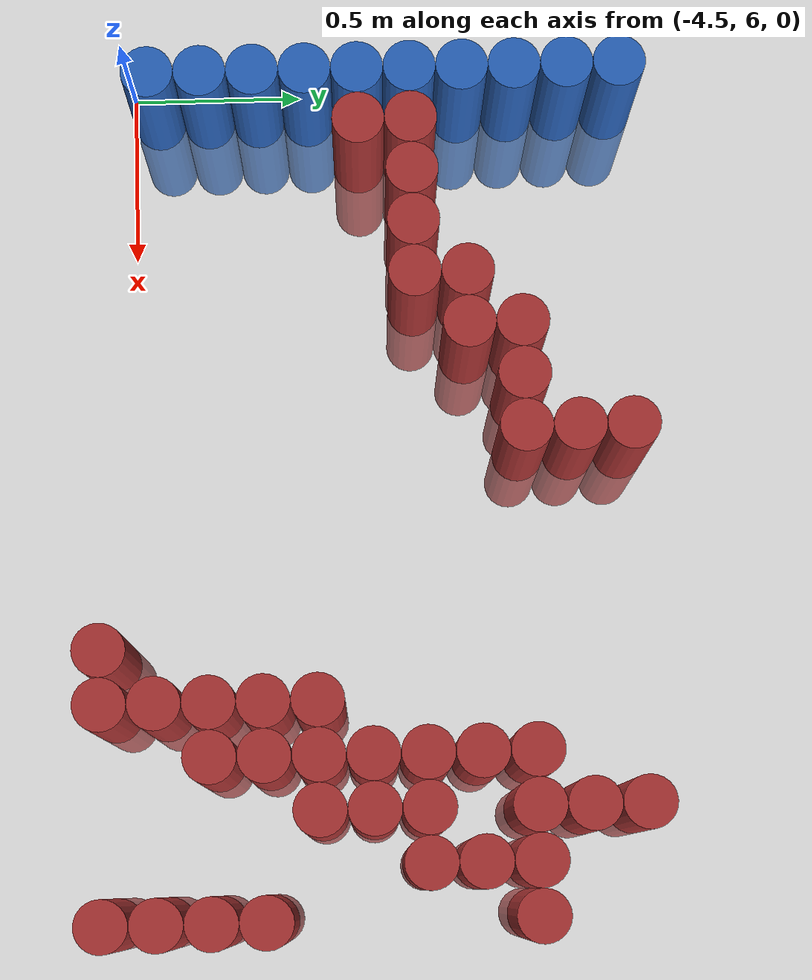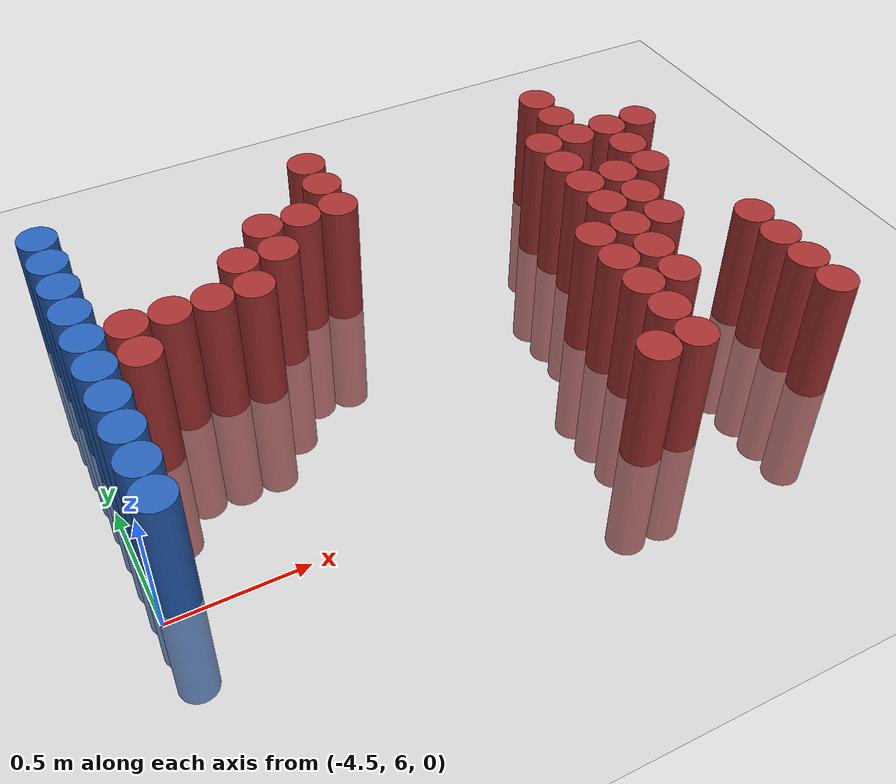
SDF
<sdf version="1.6">
 <world name="default">
  <model name="ground_plane">
   <static>1</static>
   <link name="link">
    <collision name="collision">
     <geometry><plane><normal>0 0 1</normal><size>100 100</size></plane></geometry>
     <surface><friction><ode><mu>100</mu><mu2>50</mu2></ode></friction></surface>
    </collision>
    <visual name="visual">
     <cast_shadows>0</cast_shadows>
     <geometry><plane><normal>0 0 1</normal><size>100 100</size></plane></geometry>
     <material>
      <script><uri>file://media/materials/scripts/gazebo.material</uri><name>Gazebo/Grey</name></script>
     </material>
    </visual>
   </link>
  </model>
  <model name="unit_cylinder_102">
   <static>1</static>
   <pose>-4.425000 6.075000 0.000000 0.000000 0.000000 0.000000</pose>
   <link name="link">
    <inertial>
     <mass>1</mass>
     <inertia><ixx>0.145833</ixx><ixy>0</ixy><ixz>0</ixz><iyy>0.145833</iyy><iyz>0</iyz><izz>0.125</izz></inertia>
    </inertial>
    <collision name="collision">
     <geometry><cylinder><radius>0.075000</radius><length>1</length></cylinder></geometry>
    </collision>
    <visual name="visual">
     <geometry><cylinder><radius>0.075000</radius><length>1</length></cylinder></geometry>
     <material>
      <ambient>0.152000 0.379000 0.720000 1</ambient>
      <diffuse>0.152000 0.379000 0.720000 1</diffuse>
     </material>
     <material>
      <script><name>Gazebo/Grey</name><uri>file://media/materials/scripts/gazebo.material</uri></script>
     </material>
    </visual>
   </link>
  </model>
  <model name="unit_cylinder_103">
   <static>1</static>
   <pose>-4.425000 6.225000 0.000000 0.000000 0.000000 0.000000</pose>
   <link name="link">
    <inertial>
     <mass>1</mass>
     <inertia><ixx>0.145833</ixx><ixy>0</ixy><ixz>0</ixz><iyy>0.145833</iyy><iyz>0</iyz><izz>0.125</izz></inertia>
    </inertial>
    <collision name="collision">
     <geometry><cylinder><radius>0.075000</radius><length>1</length></cylinder></geometry>
    </collision>
    <visual name="visual">
     <geometry><cylinder><radius>0.075000</radius><length>1</length></cylinder></geometry>
     <material>
      <ambient>0.152000 0.379000 0.720000 1</ambient>
      <diffuse>0.152000 0.379000 0.720000 1</diffuse>
     </material>
     <material>
      <script><name>Gazebo/Grey</name><uri>file://media/materials/scripts/gazebo.material</uri></script>
     </material>
    </visual>
   </link>
  </model>
  <model name="unit_cylinder_104">
   <static>1</static>
   <pose>-4.425000 6.375000 0.000000 0.000000 0.000000 0.000000</pose>
   <link name="link">
    <inertial>
     <mass>1</mass>
     <inertia><ixx>0.145833</ixx><ixy>0</ixy><ixz>0</ixz><iyy>0.145833</iyy><iyz>0</iyz><izz>0.125</izz></inertia>
    </inertial>
    <collision name="collision">
     <geometry><cylinder><radius>0.075000</radius><length>1</length></cylinder></geometry>
    </collision>
    <visual name="visual">
     <geometry><cylinder><radius>0.075000</radius><length>1</length></cylinder></geometry>
     <material>
      <ambient>0.152000 0.379000 0.720000 1</ambient>
      <diffuse>0.152000 0.379000 0.720000 1</diffuse>
     </material>
     <material>
      <script><name>Gazebo/Grey</name><uri>file://media/materials/scripts/gazebo.material</uri></script>
     </material>
    </visual>
   </link>
  </model>
  <model name="unit_cylinder_105">
   <static>1</static>
   <pose>-4.425000 6.525000 0.000000 0.000000 0.000000 0.000000</pose>
   <link name="link">
    <inertial>
     <mass>1</mass>
     <inertia><ixx>0.145833</ixx><ixy>0</ixy><ixz>0</ixz><iyy>0.145833</iyy><iyz>0</iyz><izz>0.125</izz></inertia>
    </inertial>
    <collision name="collision">
     <geometry><cylinder><radius>0.075000</radius><length>1</length></cylinder></geometry>
    </collision>
    <visual name="visual">
     <geometry><cylinder><radius>0.075000</radius><length>1</length></cylinder></geometry>
     <material>
      <ambient>0.152000 0.379000 0.720000 1</ambient>
      <diffuse>0.152000 0.379000 0.720000 1</diffuse>
     </material>
     <material>
      <script><name>Gazebo/Grey</name><uri>file://media/materials/scripts/gazebo.material</uri></script>
     </material>
    </visual>
   </link>
  </model>
  <model name="unit_cylinder_106">
   <static>1</static>
   <pose>-4.425000 6.675000 0.000000 0.000000 0.000000 0.000000</pose>
   <link name="link">
    <inertial>
     <mass>1</mass>
     <inertia><ixx>0.145833</ixx><ixy>0</ixy><ixz>0</ixz><iyy>0.145833</iyy><iyz>0</iyz><izz>0.125</izz></inertia>
    </inertial>
    <collision name="collision">
     <geometry><cylinder><radius>0.075000</radius><length>1</length></cylinder></geometry>
    </collision>
    <visual name="visual">
     <geometry><cylinder><radius>0.075000</radius><length>1</length></cylinder></geometry>
     <material>
      <ambient>0.152000 0.379000 0.720000 1</ambient>
      <diffuse>0.152000 0.379000 0.720000 1</diffuse>
     </material>
     <material>
      <script><name>Gazebo/Grey</name><uri>file://media/materials/scripts/gazebo.material</uri></script>
     </material>
    </visual>
   </link>
  </model>
  <model name="unit_cylinder_107">
   <static>1</static>
   <pose>-4.425000 6.825000 0.000000 0.000000 0.000000 0.000000</pose>
   <link name="link">
    <inertial>
     <mass>1</mass>
     <inertia><ixx>0.145833</ixx><ixy>0</ixy><ixz>0</ixz><iyy>0.145833</iyy><iyz>0</iyz><izz>0.125</izz></inertia>
    </inertial>
    <collision name="collision">
     <geometry><cylinder><radius>0.075000</radius><length>1</length></cylinder></geometry>
    </collision>
    <visual name="visual">
     <geometry><cylinder><radius>0.075000</radius><length>1</length></cylinder></geometry>
     <material>
      <ambient>0.152000 0.379000 0.720000 1</ambient>
      <diffuse>0.152000 0.379000 0.720000 1</diffuse>
     </material>
     <material>
      <script><name>Gazebo/Grey</name><uri>file://media/materials/scripts/gazebo.material</uri></script>
     </material>
    </visual>
   </link>
  </model>
  <model name="unit_cylinder_108">
   <static>1</static>
   <pose>-4.425000 6.975000 0.000000 0.000000 0.000000 0.000000</pose>
   <link name="link">
    <inertial>
     <mass>1</mass>
     <inertia><ixx>0.145833</ixx><ixy>0</ixy><ixz>0</ixz><iyy>0.145833</iyy><iyz>0</iyz><izz>0.125</izz></inertia>
    </inertial>
    <collision name="collision">
     <geometry><cylinder><radius>0.075000</radius><length>1</length></cylinder></geometry>
    </collision>
    <visual name="visual">
     <geometry><cylinder><radius>0.075000</radius><length>1</length></cylinder></geometry>
     <material>
      <ambient>0.152000 0.379000 0.720000 1</ambient>
      <diffuse>0.152000 0.379000 0.720000 1</diffuse>
     </material>
     <material>
      <script><name>Gazebo/Grey</name><uri>file://media/materials/scripts/gazebo.material</uri></script>
     </material>
    </visual>
   </link>
  </model>
  <model name="unit_cylinder_109">
   <static>1</static>
   <pose>-4.425000 7.125000 0.000000 0.000000 0.000000 0.000000</pose>
   <link name="link">
    <inertial>
     <mass>1</mass>
     <inertia><ixx>0.145833</ixx><ixy>0</ixy><ixz>0</ixz><iyy>0.145833</iyy><iyz>0</iyz><izz>0.125</izz></inertia>
    </inertial>
    <collision name="collision">
     <geometry><cylinder><radius>0.075000</radius><length>1</length></cylinder></geometry>
    </collision>
    <visual name="visual">
     <geometry><cylinder><radius>0.075000</radius><length>1</length></cylinder></geometry>
     <material>
      <ambient>0.152000 0.379000 0.720000 1</ambient>
      <diffuse>0.152000 0.379000 0.720000 1</diffuse>
     </material>
     <material>
      <script><name>Gazebo/Grey</name><uri>file://media/materials/scripts/gazebo.material</uri></script>
     </material>
    </visual>
   </link>
  </model>
  <model name="unit_cylinder_110">
   <static>1</static>
   <pose>-4.425000 7.275000 0.000000 0.000000 0.000000 0.000000</pose>
   <link name="link">
    <inertial>
     <mass>1</mass>
     <inertia><ixx>0.145833</ixx><ixy>0</ixy><ixz>0</ixz><iyy>0.145833</iyy><iyz>0</iyz><izz>0.125</izz></inertia>
    </inertial>
    <collision name="collision">
     <geometry><cylinder><radius>0.075000</radius><length>1</length></cylinder></geometry>
    </collision>
    <visual name="visual">
     <geometry><cylinder><radius>0.075000</radius><length>1</length></cylinder></geometry>
     <material>
      <ambient>0.152000 0.379000 0.720000 1</ambient>
      <diffuse>0.152000 0.379000 0.720000 1</diffuse>
     </material>
     <material>
      <script><name>Gazebo/Grey</name><uri>file://media/materials/scripts/gazebo.material</uri></script>
     </material>
    </visual>
   </link>
  </model>
  <model name="unit_cylinder_111">
   <static>1</static>
   <pose>-4.425000 7.425000 0.000000 0.000000 0.000000 0.000000</pose>
   <link name="link">
    <inertial>
     <mass>1</mass>
     <inertia><ixx>0.145833</ixx><ixy>0</ixy><ixz>0</ixz><iyy>0.145833</iyy><iyz>0</iyz><izz>0.125</izz></inertia>
    </inertial>
    <collision name="collision">
     <geometry><cylinder><radius>0.075000</radius><length>1</length></cylinder></geometry>
    </collision>
    <visual name="visual">
     <geometry><cylinder><radius>0.075000</radius><length>1</length></cylinder></geometry>
     <material>
      <ambient>0.152000 0.379000 0.720000 1</ambient>
      <diffuse>0.152000 0.379000 0.720000 1</diffuse>
     </material>
     <material>
      <script><name>Gazebo/Grey</name><uri>file://media/materials/scripts/gazebo.material</uri></script>
     </material>
    </visual>
   </link>
  </model>
  <model name="unit_cylinder_126">
   <static>1</static>
   <pose>-4.275000 6.675000 0.000000 0.000000 0.000000 0.000000</pose>
   <link name="link">
    <inertial>
     <mass>1</mass>
     <inertia><ixx>0.145833</ixx><ixy>0</ixy><ixz>0</ixz><iyy>0.145833</iyy><iyz>0</iyz><izz>0.125</izz></inertia>
    </inertial>
    <collision name="collision">
     <geometry><cylinder><radius>0.075000</radius><length>1</length></cylinder></geometry>
    </collision>
    <visual name="visual">
     <geometry><cylinder><radius>0.075000</radius><length>1</length></cylinder></geometry>
     <material>
      <ambient>0.648000 0.192000 0.192000 1</ambient>
      <diffuse>0.648000 0.192000 0.192000 1</diffuse>
     </material>
     <material>
      <script><name>Gazebo/Grey</name><uri>file://media/materials/scripts/gazebo.material</uri></script>
     </material>
    </visual>
   </link>
  </model>
  <model name="unit_cylinder_127">
   <static>1</static>
   <pose>-4.275000 6.825000 0.000000 0.000000 0.000000 0.000000</pose>
   <link name="link">
    <inertial>
     <mass>1</mass>
     <inertia><ixx>0.145833</ixx><ixy>0</ixy><ixz>0</ixz><iyy>0.145833</iyy><iyz>0</iyz><izz>0.125</izz></inertia>
    </inertial>
    <collision name="collision">
     <geometry><cylinder><radius>0.075000</radius><length>1</length></cylinder></geometry>
    </collision>
    <visual name="visual">
     <geometry><cylinder><radius>0.075000</radius><length>1</length></cylinder></geometry>
     <material>
      <ambient>0.648000 0.192000 0.192000 1</ambient>
      <diffuse>0.648000 0.192000 0.192000 1</diffuse>
     </material>
     <material>
      <script><name>Gazebo/Grey</name><uri>file://media/materials/scripts/gazebo.material</uri></script>
     </material>
    </visual>
   </link>
  </model>
  <model name="unit_cylinder_129">
   <static>1</static>
   <pose>-4.125000 6.825000 0.000000 0.000000 0.000000 0.000000</pose>
   <link name="link">
    <inertial>
     <mass>1</mass>
     <inertia><ixx>0.145833</ixx><ixy>0</ixy><ixz>0</ixz><iyy>0.145833</iyy><iyz>0</iyz><izz>0.125</izz></inertia>
    </inertial>
    <collision name="collision">
     <geometry><cylinder><radius>0.075000</radius><length>1</length></cylinder></geometry>
    </collision>
    <visual name="visual">
     <geometry><cylinder><radius>0.075000</radius><length>1</length></cylinder></geometry>
     <material>
      <ambient>0.648000 0.192000 0.192000 1</ambient>
      <diffuse>0.648000 0.192000 0.192000 1</diffuse>
     </material>
     <material>
      <script><name>Gazebo/Grey</name><uri>file://media/materials/scripts/gazebo.material</uri></script>
     </material>
    </visual>
   </link>
  </model>
  <model name="unit_cylinder_136">
   <static>1</static>
   <pose>-3.975000 6.825000 0.000000 0.000000 0.000000 0.000000</pose>
   <link name="link">
    <inertial>
     <mass>1</mass>
     <inertia><ixx>0.145833</ixx><ixy>0</ixy><ixz>0</ixz><iyy>0.145833</iyy><iyz>0</iyz><izz>0.125</izz></inertia>
    </inertial>
    <collision name="collision">
     <geometry><cylinder><radius>0.075000</radius><length>1</length></cylinder></geometry>
    </collision>
    <visual name="visual">
     <geometry><cylinder><radius>0.075000</radius><length>1</length></cylinder></geometry>
     <material>
      <ambient>0.648000 0.192000 0.192000 1</ambient>
      <diffuse>0.648000 0.192000 0.192000 1</diffuse>
     </material>
     <material>
      <script><name>Gazebo/Grey</name><uri>file://media/materials/scripts/gazebo.material</uri></script>
     </material>
    </visual>
   </link>
  </model>
  <model name="unit_cylinder_141">
   <static>1</static>
   <pose>-3.825000 6.825000 0.000000 0.000000 0.000000 0.000000</pose>
   <link name="link">
    <inertial>
     <mass>1</mass>
     <inertia><ixx>0.145833</ixx><ixy>0</ixy><ixz>0</ixz><iyy>0.145833</iyy><iyz>0</iyz><izz>0.125</izz></inertia>
    </inertial>
    <collision name="collision">
     <geometry><cylinder><radius>0.075000</radius><length>1</length></cylinder></geometry>
    </collision>
    <visual name="visual">
     <geometry><cylinder><radius>0.075000</radius><length>1</length></cylinder></geometry>
     <material>
      <ambient>0.648000 0.192000 0.192000 1</ambient>
      <diffuse>0.648000 0.192000 0.192000 1</diffuse>
     </material>
     <material>
      <script><name>Gazebo/Grey</name><uri>file://media/materials/scripts/gazebo.material</uri></script>
     </material>
    </visual>
   </link>
  </model>
  <model name="unit_cylinder_142">
   <static>1</static>
   <pose>-3.825000 6.975000 0.000000 0.000000 0.000000 0.000000</pose>
   <link name="link">
    <inertial>
     <mass>1</mass>
     <inertia><ixx>0.145833</ixx><ixy>0</ixy><ixz>0</ixz><iyy>0.145833</iyy><iyz>0</iyz><izz>0.125</izz></inertia>
    </inertial>
    <collision name="collision">
     <geometry><cylinder><radius>0.075000</radius><length>1</length></cylinder></geometry>
    </collision>
    <visual name="visual">
     <geometry><cylinder><radius>0.075000</radius><length>1</length></cylinder></geometry>
     <material>
      <ambient>0.648000 0.192000 0.192000 1</ambient>
      <diffuse>0.648000 0.192000 0.192000 1</diffuse>
     </material>
     <material>
      <script><name>Gazebo/Grey</name><uri>file://media/materials/scripts/gazebo.material</uri></script>
     </material>
    </visual>
   </link>
  </model>
  <model name="unit_cylinder_146">
   <static>1</static>
   <pose>-3.675000 6.975000 0.000000 0.000000 0.000000 0.000000</pose>
   <link name="link">
    <inertial>
     <mass>1</mass>
     <inertia><ixx>0.145833</ixx><ixy>0</ixy><ixz>0</ixz><iyy>0.145833</iyy><iyz>0</iyz><izz>0.125</izz></inertia>
    </inertial>
    <collision name="collision">
     <geometry><cylinder><radius>0.075000</radius><length>1</length></cylinder></geometry>
    </collision>
    <visual name="visual">
     <geometry><cylinder><radius>0.075000</radius><length>1</length></cylinder></geometry>
     <material>
      <ambient>0.648000 0.192000 0.192000 1</ambient>
      <diffuse>0.648000 0.192000 0.192000 1</diffuse>
     </material>
     <material>
      <script><name>Gazebo/Grey</name><uri>file://media/materials/scripts/gazebo.material</uri></script>
     </material>
    </visual>
   </link>
  </model>
  <model name="unit_cylinder_147">
   <static>1</static>
   <pose>-3.675000 7.125000 0.000000 0.000000 0.000000 0.000000</pose>
   <link name="link">
    <inertial>
     <mass>1</mass>
     <inertia><ixx>0.145833</ixx><ixy>0</ixy><ixz>0</ixz><iyy>0.145833</iyy><iyz>0</iyz><izz>0.125</izz></inertia>
    </inertial>
    <collision name="collision">
     <geometry><cylinder><radius>0.075000</radius><length>1</length></cylinder></geometry>
    </collision>
    <visual name="visual">
     <geometry><cylinder><radius>0.075000</radius><length>1</length></cylinder></geometry>
     <material>
      <ambient>0.648000 0.192000 0.192000 1</ambient>
      <diffuse>0.648000 0.192000 0.192000 1</diffuse>
     </material>
     <material>
      <script><name>Gazebo/Grey</name><uri>file://media/materials/scripts/gazebo.material</uri></script>
     </material>
    </visual>
   </link>
  </model>
  <model name="unit_cylinder_149">
   <static>1</static>
   <pose>-3.525000 7.125000 0.000000 0.000000 0.000000 0.000000</pose>
   <link name="link">
    <inertial>
     <mass>1</mass>
     <inertia><ixx>0.145833</ixx><ixy>0</ixy><ixz>0</ixz><iyy>0.145833</iyy><iyz>0</iyz><izz>0.125</izz></inertia>
    </inertial>
    <collision name="collision">
     <geometry><cylinder><radius>0.075000</radius><length>1</length></cylinder></geometry>
    </collision>
    <visual name="visual">
     <geometry><cylinder><radius>0.075000</radius><length>1</length></cylinder></geometry>
     <material>
      <ambient>0.648000 0.192000 0.192000 1</ambient>
      <diffuse>0.648000 0.192000 0.192000 1</diffuse>
     </material>
     <material>
      <script><name>Gazebo/Grey</name><uri>file://media/materials/scripts/gazebo.material</uri></script>
     </material>
    </visual>
   </link>
  </model>
  <model name="unit_cylinder_151">
   <static>1</static>
   <pose>-3.375000 7.125000 0.000000 0.000000 0.000000 0.000000</pose>
   <link name="link">
    <inertial>
     <mass>1</mass>
     <inertia><ixx>0.145833</ixx><ixy>0</ixy><ixz>0</ixz><iyy>0.145833</iyy><iyz>0</iyz><izz>0.125</izz></inertia>
    </inertial>
    <collision name="collision">
     <geometry><cylinder><radius>0.075000</radius><length>1</length></cylinder></geometry>
    </collision>
    <visual name="visual">
     <geometry><cylinder><radius>0.075000</radius><length>1</length></cylinder></geometry>
     <material>
      <ambient>0.648000 0.192000 0.192000 1</ambient>
      <diffuse>0.648000 0.192000 0.192000 1</diffuse>
     </material>
     <material>
      <script><name>Gazebo/Grey</name><uri>file://media/materials/scripts/gazebo.material</uri></script>
     </material>
    </visual>
   </link>
  </model>
  <model name="unit_cylinder_152">
   <static>1</static>
   <pose>-3.375000 7.275000 0.000000 0.000000 0.000000 0.000000</pose>
   <link name="link">
    <inertial>
     <mass>1</mass>
     <inertia><ixx>0.145833</ixx><ixy>0</ixy><ixz>0</ixz><iyy>0.145833</iyy><iyz>0</iyz><izz>0.125</izz></inertia>
    </inertial>
    <collision name="collision">
     <geometry><cylinder><radius>0.075000</radius><length>1</length></cylinder></geometry>
    </collision>
    <visual name="visual">
     <geometry><cylinder><radius>0.075000</radius><length>1</length></cylinder></geometry>
     <material>
      <ambient>0.648000 0.192000 0.192000 1</ambient>
      <diffuse>0.648000 0.192000 0.192000 1</diffuse>
     </material>
     <material>
      <script><name>Gazebo/Grey</name><uri>file://media/materials/scripts/gazebo.material</uri></script>
     </material>
    </visual>
   </link>
  </model>
  <model name="unit_cylinder_153">
   <static>1</static>
   <pose>-3.375000 7.425000 0.000000 0.000000 0.000000 0.000000</pose>
   <link name="link">
    <inertial>
     <mass>1</mass>
     <inertia><ixx>0.145833</ixx><ixy>0</ixy><ixz>0</ixz><iyy>0.145833</iyy><iyz>0</iyz><izz>0.125</izz></inertia>
    </inertial>
    <collision name="collision">
     <geometry><cylinder><radius>0.075000</radius><length>1</length></cylinder></geometry>
    </collision>
    <visual name="visual">
     <geometry><cylinder><radius>0.075000</radius><length>1</length></cylinder></geometry>
     <material>
      <ambient>0.648000 0.192000 0.192000 1</ambient>
      <diffuse>0.648000 0.192000 0.192000 1</diffuse>
     </material>
     <material>
      <script><name>Gazebo/Grey</name><uri>file://media/materials/scripts/gazebo.material</uri></script>
     </material>
    </visual>
   </link>
  </model>
  <model name="unit_cylinder_165">
   <static>1</static>
   <pose>-2.775000 5.925000 0.000000 0.000000 0.000000 0.000000</pose>
   <link name="link">
    <inertial>
     <mass>1</mass>
     <inertia><ixx>0.145833</ixx><ixy>0</ixy><ixz>0</ixz><iyy>0.145833</iyy><iyz>0</iyz><izz>0.125</izz></inertia>
    </inertial>
    <collision name="collision">
     <geometry><cylinder><radius>0.075000</radius><length>1</length></cylinder></geometry>
    </collision>
    <visual name="visual">
     <geometry><cylinder><radius>0.075000</radius><length>1</length></cylinder></geometry>
     <material>
      <ambient>0.648000 0.192000 0.192000 1</ambient>
      <diffuse>0.648000 0.192000 0.192000 1</diffuse>
     </material>
     <material>
      <script><name>Gazebo/Grey</name><uri>file://media/materials/scripts/gazebo.material</uri></script>
     </material>
    </visual>
   </link>
  </model>
  <model name="unit_cylinder_168">
   <static>1</static>
   <pose>-2.625000 5.925000 0.000000 0.000000 0.000000 0.000000</pose>
   <link name="link">
    <inertial>
     <mass>1</mass>
     <inertia><ixx>0.145833</ixx><ixy>0</ixy><ixz>0</ixz><iyy>0.145833</iyy><iyz>0</iyz><izz>0.125</izz></inertia>
    </inertial>
    <collision name="collision">
     <geometry><cylinder><radius>0.075000</radius><length>1</length></cylinder></geometry>
    </collision>
    <visual name="visual">
     <geometry><cylinder><radius>0.075000</radius><length>1</length></cylinder></geometry>
     <material>
      <ambient>0.648000 0.192000 0.192000 1</ambient>
      <diffuse>0.648000 0.192000 0.192000 1</diffuse>
     </material>
     <material>
      <script><name>Gazebo/Grey</name><uri>file://media/materials/scripts/gazebo.material</uri></script>
     </material>
    </visual>
   </link>
  </model>
  <model name="unit_cylinder_169">
   <static>1</static>
   <pose>-2.625000 6.075000 0.000000 0.000000 0.000000 0.000000</pose>
   <link name="link">
    <inertial>
     <mass>1</mass>
     <inertia><ixx>0.145833</ixx><ixy>0</ixy><ixz>0</ixz><iyy>0.145833</iyy><iyz>0</iyz><izz>0.125</izz></inertia>
    </inertial>
    <collision name="collision">
     <geometry><cylinder><radius>0.075000</radius><length>1</length></cylinder></geometry>
    </collision>
    <visual name="visual">
     <geometry><cylinder><radius>0.075000</radius><length>1</length></cylinder></geometry>
     <material>
      <ambient>0.648000 0.192000 0.192000 1</ambient>
      <diffuse>0.648000 0.192000 0.192000 1</diffuse>
     </material>
     <material>
      <script><name>Gazebo/Grey</name><uri>file://media/materials/scripts/gazebo.material</uri></script>
     </material>
    </visual>
   </link>
  </model>
  <model name="unit_cylinder_170">
   <static>1</static>
   <pose>-2.625000 6.225000 0.000000 0.000000 0.000000 0.000000</pose>
   <link name="link">
    <inertial>
     <mass>1</mass>
     <inertia><ixx>0.145833</ixx><ixy>0</ixy><ixz>0</ixz><iyy>0.145833</iyy><iyz>0</iyz><izz>0.125</izz></inertia>
    </inertial>
    <collision name="collision">
     <geometry><cylinder><radius>0.075000</radius><length>1</length></cylinder></geometry>
    </collision>
    <visual name="visual">
     <geometry><cylinder><radius>0.075000</radius><length>1</length></cylinder></geometry>
     <material>
      <ambient>0.648000 0.192000 0.192000 1</ambient>
      <diffuse>0.648000 0.192000 0.192000 1</diffuse>
     </material>
     <material>
      <script><name>Gazebo/Grey</name><uri>file://media/materials/scripts/gazebo.material</uri></script>
     </material>
    </visual>
   </link>
  </model>
  <model name="unit_cylinder_171">
   <static>1</static>
   <pose>-2.625000 6.375000 0.000000 0.000000 0.000000 0.000000</pose>
   <link name="link">
    <inertial>
     <mass>1</mass>
     <inertia><ixx>0.145833</ixx><ixy>0</ixy><ixz>0</ixz><iyy>0.145833</iyy><iyz>0</iyz><izz>0.125</izz></inertia>
    </inertial>
    <collision name="collision">
     <geometry><cylinder><radius>0.075000</radius><length>1</length></cylinder></geometry>
    </collision>
    <visual name="visual">
     <geometry><cylinder><radius>0.075000</radius><length>1</length></cylinder></geometry>
     <material>
      <ambient>0.648000 0.192000 0.192000 1</ambient>
      <diffuse>0.648000 0.192000 0.192000 1</diffuse>
     </material>
     <material>
      <script><name>Gazebo/Grey</name><uri>file://media/materials/scripts/gazebo.material</uri></script>
     </material>
    </visual>
   </link>
  </model>
  <model name="unit_cylinder_172">
   <static>1</static>
   <pose>-2.625000 6.525000 0.000000 0.000000 0.000000 0.000000</pose>
   <link name="link">
    <inertial>
     <mass>1</mass>
     <inertia><ixx>0.145833</ixx><ixy>0</ixy><ixz>0</ixz><iyy>0.145833</iyy><iyz>0</iyz><izz>0.125</izz></inertia>
    </inertial>
    <collision name="collision">
     <geometry><cylinder><radius>0.075000</radius><length>1</length></cylinder></geometry>
    </collision>
    <visual name="visual">
     <geometry><cylinder><radius>0.075000</radius><length>1</length></cylinder></geometry>
     <material>
      <ambient>0.648000 0.192000 0.192000 1</ambient>
      <diffuse>0.648000 0.192000 0.192000 1</diffuse>
     </material>
     <material>
      <script><name>Gazebo/Grey</name><uri>file://media/materials/scripts/gazebo.material</uri></script>
     </material>
    </visual>
   </link>
  </model>
  <model name="unit_cylinder_174">
   <static>1</static>
   <pose>-2.475000 6.225000 0.000000 0.000000 0.000000 0.000000</pose>
   <link name="link">
    <inertial>
     <mass>1</mass>
     <inertia><ixx>0.145833</ixx><ixy>0</ixy><ixz>0</ixz><iyy>0.145833</iyy><iyz>0</iyz><izz>0.125</izz></inertia>
    </inertial>
    <collision name="collision">
     <geometry><cylinder><radius>0.075000</radius><length>1</length></cylinder></geometry>
    </collision>
    <visual name="visual">
     <geometry><cylinder><radius>0.075000</radius><length>1</length></cylinder></geometry>
     <material>
      <ambient>0.648000 0.192000 0.192000 1</ambient>
      <diffuse>0.648000 0.192000 0.192000 1</diffuse>
     </material>
     <material>
      <script><name>Gazebo/Grey</name><uri>file://media/materials/scripts/gazebo.material</uri></script>
     </material>
    </visual>
   </link>
  </model>
  <model name="unit_cylinder_175">
   <static>1</static>
   <pose>-2.475000 6.375000 0.000000 0.000000 0.000000 0.000000</pose>
   <link name="link">
    <inertial>
     <mass>1</mass>
     <inertia><ixx>0.145833</ixx><ixy>0</ixy><ixz>0</ixz><iyy>0.145833</iyy><iyz>0</iyz><izz>0.125</izz></inertia>
    </inertial>
    <collision name="collision">
     <geometry><cylinder><radius>0.075000</radius><length>1</length></cylinder></geometry>
    </collision>
    <visual name="visual">
     <geometry><cylinder><radius>0.075000</radius><length>1</length></cylinder></geometry>
     <material>
      <ambient>0.648000 0.192000 0.192000 1</ambient>
      <diffuse>0.648000 0.192000 0.192000 1</diffuse>
     </material>
     <material>
      <script><name>Gazebo/Grey</name><uri>file://media/materials/scripts/gazebo.material</uri></script>
     </material>
    </visual>
   </link>
  </model>
  <model name="unit_cylinder_176">
   <static>1</static>
   <pose>-2.475000 6.525000 0.000000 0.000000 0.000000 0.000000</pose>
   <link name="link">
    <inertial>
     <mass>1</mass>
     <inertia><ixx>0.145833</ixx><ixy>0</ixy><ixz>0</ixz><iyy>0.145833</iyy><iyz>0</iyz><izz>0.125</izz></inertia>
    </inertial>
    <collision name="collision">
     <geometry><cylinder><radius>0.075000</radius><length>1</length></cylinder></geometry>
    </collision>
    <visual name="visual">
     <geometry><cylinder><radius>0.075000</radius><length>1</length></cylinder></geometry>
     <material>
      <ambient>0.648000 0.192000 0.192000 1</ambient>
      <diffuse>0.648000 0.192000 0.192000 1</diffuse>
     </material>
     <material>
      <script><name>Gazebo/Grey</name><uri>file://media/materials/scripts/gazebo.material</uri></script>
     </material>
    </visual>
   </link>
  </model>
  <model name="unit_cylinder_177">
   <static>1</static>
   <pose>-2.475000 6.675000 0.000000 0.000000 0.000000 0.000000</pose>
   <link name="link">
    <inertial>
     <mass>1</mass>
     <inertia><ixx>0.145833</ixx><ixy>0</ixy><ixz>0</ixz><iyy>0.145833</iyy><iyz>0</iyz><izz>0.125</izz></inertia>
    </inertial>
    <collision name="collision">
     <geometry><cylinder><radius>0.075000</radius><length>1</length></cylinder></geometry>
    </collision>
    <visual name="visual">
     <geometry><cylinder><radius>0.075000</radius><length>1</length></cylinder></geometry>
     <material>
      <ambient>0.648000 0.192000 0.192000 1</ambient>
      <diffuse>0.648000 0.192000 0.192000 1</diffuse>
     </material>
     <material>
      <script><name>Gazebo/Grey</name><uri>file://media/materials/scripts/gazebo.material</uri></script>
     </material>
    </visual>
   </link>
  </model>
  <model name="unit_cylinder_178">
   <static>1</static>
   <pose>-2.475000 6.825000 0.000000 0.000000 0.000000 0.000000</pose>
   <link name="link">
    <inertial>
     <mass>1</mass>
     <inertia><ixx>0.145833</ixx><ixy>0</ixy><ixz>0</ixz><iyy>0.145833</iyy><iyz>0</iyz><izz>0.125</izz></inertia>
    </inertial>
    <collision name="collision">
     <geometry><cylinder><radius>0.075000</radius><length>1</length></cylinder></geometry>
    </collision>
    <visual name="visual">
     <geometry><cylinder><radius>0.075000</radius><length>1</length></cylinder></geometry>
     <material>
      <ambient>0.648000 0.192000 0.192000 1</ambient>
      <diffuse>0.648000 0.192000 0.192000 1</diffuse>
     </material>
     <material>
      <script><name>Gazebo/Grey</name><uri>file://media/materials/scripts/gazebo.material</uri></script>
     </material>
    </visual>
   </link>
  </model>
  <model name="unit_cylinder_179">
   <static>1</static>
   <pose>-2.475000 6.975000 0.000000 0.000000 0.000000 0.000000</pose>
   <link name="link">
    <inertial>
     <mass>1</mass>
     <inertia><ixx>0.145833</ixx><ixy>0</ixy><ixz>0</ixz><iyy>0.145833</iyy><iyz>0</iyz><izz>0.125</izz></inertia>
    </inertial>
    <collision name="collision">
     <geometry><cylinder><radius>0.075000</radius><length>1</length></cylinder></geometry>
    </collision>
    <visual name="visual">
     <geometry><cylinder><radius>0.075000</radius><length>1</length></cylinder></geometry>
     <material>
      <ambient>0.648000 0.192000 0.192000 1</ambient>
      <diffuse>0.648000 0.192000 0.192000 1</diffuse>
     </material>
     <material>
      <script><name>Gazebo/Grey</name><uri>file://media/materials/scripts/gazebo.material</uri></script>
     </material>
    </visual>
   </link>
  </model>
  <model name="unit_cylinder_180">
   <static>1</static>
   <pose>-2.475000 7.125000 0.000000 0.000000 0.000000 0.000000</pose>
   <link name="link">
    <inertial>
     <mass>1</mass>
     <inertia><ixx>0.145833</ixx><ixy>0</ixy><ixz>0</ixz><iyy>0.145833</iyy><iyz>0</iyz><izz>0.125</izz></inertia>
    </inertial>
    <collision name="collision">
     <geometry><cylinder><radius>0.075000</radius><length>1</length></cylinder></geometry>
    </collision>
    <visual name="visual">
     <geometry><cylinder><radius>0.075000</radius><length>1</length></cylinder></geometry>
     <material>
      <ambient>0.648000 0.192000 0.192000 1</ambient>
      <diffuse>0.648000 0.192000 0.192000 1</diffuse>
     </material>
     <material>
      <script><name>Gazebo/Grey</name><uri>file://media/materials/scripts/gazebo.material</uri></script>
     </material>
    </visual>
   </link>
  </model>
  <model name="unit_cylinder_183">
   <static>1</static>
   <pose>-2.325000 6.525000 0.000000 0.000000 0.000000 0.000000</pose>
   <link name="link">
    <inertial>
     <mass>1</mass>
     <inertia><ixx>0.145833</ixx><ixy>0</ixy><ixz>0</ixz><iyy>0.145833</iyy><iyz>0</iyz><izz>0.125</izz></inertia>
    </inertial>
    <collision name="collision">
     <geometry><cylinder><radius>0.075000</radius><length>1</length></cylinder></geometry>
    </collision>
    <visual name="visual">
     <geometry><cylinder><radius>0.075000</radius><length>1</length></cylinder></geometry>
     <material>
      <ambient>0.648000 0.192000 0.192000 1</ambient>
      <diffuse>0.648000 0.192000 0.192000 1</diffuse>
     </material>
     <material>
      <script><name>Gazebo/Grey</name><uri>file://media/materials/scripts/gazebo.material</uri></script>
     </material>
    </visual>
   </link>
  </model>
  <model name="unit_cylinder_184">
   <static>1</static>
   <pose>-2.325000 6.675000 0.000000 0.000000 0.000000 0.000000</pose>
   <link name="link">
    <inertial>
     <mass>1</mass>
     <inertia><ixx>0.145833</ixx><ixy>0</ixy><ixz>0</ixz><iyy>0.145833</iyy><iyz>0</iyz><izz>0.125</izz></inertia>
    </inertial>
    <collision name="collision">
     <geometry><cylinder><radius>0.075000</radius><length>1</length></cylinder></geometry>
    </collision>
    <visual name="visual">
     <geometry><cylinder><radius>0.075000</radius><length>1</length></cylinder></geometry>
     <material>
      <ambient>0.648000 0.192000 0.192000 1</ambient>
      <diffuse>0.648000 0.192000 0.192000 1</diffuse>
     </material>
     <material>
      <script><name>Gazebo/Grey</name><uri>file://media/materials/scripts/gazebo.material</uri></script>
     </material>
    </visual>
   </link>
  </model>
  <model name="unit_cylinder_185">
   <static>1</static>
   <pose>-2.325000 6.825000 0.000000 0.000000 0.000000 0.000000</pose>
   <link name="link">
    <inertial>
     <mass>1</mass>
     <inertia><ixx>0.145833</ixx><ixy>0</ixy><ixz>0</ixz><iyy>0.145833</iyy><iyz>0</iyz><izz>0.125</izz></inertia>
    </inertial>
    <collision name="collision">
     <geometry><cylinder><radius>0.075000</radius><length>1</length></cylinder></geometry>
    </collision>
    <visual name="visual">
     <geometry><cylinder><radius>0.075000</radius><length>1</length></cylinder></geometry>
     <material>
      <ambient>0.648000 0.192000 0.192000 1</ambient>
      <diffuse>0.648000 0.192000 0.192000 1</diffuse>
     </material>
     <material>
      <script><name>Gazebo/Grey</name><uri>file://media/materials/scripts/gazebo.material</uri></script>
     </material>
    </visual>
   </link>
  </model>
  <model name="unit_cylinder_186">
   <static>1</static>
   <pose>-2.325000 7.125000 0.000000 0.000000 0.000000 0.000000</pose>
   <link name="link">
    <inertial>
     <mass>1</mass>
     <inertia><ixx>0.145833</ixx><ixy>0</ixy><ixz>0</ixz><iyy>0.145833</iyy><iyz>0</iyz><izz>0.125</izz></inertia>
    </inertial>
    <collision name="collision">
     <geometry><cylinder><radius>0.075000</radius><length>1</length></cylinder></geometry>
    </collision>
    <visual name="visual">
     <geometry><cylinder><radius>0.075000</radius><length>1</length></cylinder></geometry>
     <material>
      <ambient>0.648000 0.192000 0.192000 1</ambient>
      <diffuse>0.648000 0.192000 0.192000 1</diffuse>
     </material>
     <material>
      <script><name>Gazebo/Grey</name><uri>file://media/materials/scripts/gazebo.material</uri></script>
     </material>
    </visual>
   </link>
  </model>
  <model name="unit_cylinder_187">
   <static>1</static>
   <pose>-2.325000 7.275000 0.000000 0.000000 0.000000 0.000000</pose>
   <link name="link">
    <inertial>
     <mass>1</mass>
     <inertia><ixx>0.145833</ixx><ixy>0</ixy><ixz>0</ixz><iyy>0.145833</iyy><iyz>0</iyz><izz>0.125</izz></inertia>
    </inertial>
    <collision name="collision">
     <geometry><cylinder><radius>0.075000</radius><length>1</length></cylinder></geometry>
    </collision>
    <visual name="visual">
     <geometry><cylinder><radius>0.075000</radius><length>1</length></cylinder></geometry>
     <material>
      <ambient>0.648000 0.192000 0.192000 1</ambient>
      <diffuse>0.648000 0.192000 0.192000 1</diffuse>
     </material>
     <material>
      <script><name>Gazebo/Grey</name><uri>file://media/materials/scripts/gazebo.material</uri></script>
     </material>
    </visual>
   </link>
  </model>
  <model name="unit_cylinder_188">
   <static>1</static>
   <pose>-2.325000 7.425000 0.000000 0.000000 0.000000 0.000000</pose>
   <link name="link">
    <inertial>
     <mass>1</mass>
     <inertia><ixx>0.145833</ixx><ixy>0</ixy><ixz>0</ixz><iyy>0.145833</iyy><iyz>0</iyz><izz>0.125</izz></inertia>
    </inertial>
    <collision name="collision">
     <geometry><cylinder><radius>0.075000</radius><length>1</length></cylinder></geometry>
    </collision>
    <visual name="visual">
     <geometry><cylinder><radius>0.075000</radius><length>1</length></cylinder></geometry>
     <material>
      <ambient>0.648000 0.192000 0.192000 1</ambient>
      <diffuse>0.648000 0.192000 0.192000 1</diffuse>
     </material>
     <material>
      <script><name>Gazebo/Grey</name><uri>file://media/materials/scripts/gazebo.material</uri></script>
     </material>
    </visual>
   </link>
  </model>
  <model name="unit_cylinder_195">
   <static>1</static>
   <pose>-2.175000 6.825000 0.000000 0.000000 0.000000 0.000000</pose>
   <link name="link">
    <inertial>
     <mass>1</mass>
     <inertia><ixx>0.145833</ixx><ixy>0</ixy><ixz>0</ixz><iyy>0.145833</iyy><iyz>0</iyz><izz>0.125</izz></inertia>
    </inertial>
    <collision name="collision">
     <geometry><cylinder><radius>0.075000</radius><length>1</length></cylinder></geometry>
    </collision>
    <visual name="visual">
     <geometry><cylinder><radius>0.075000</radius><length>1</length></cylinder></geometry>
     <material>
      <ambient>0.648000 0.192000 0.192000 1</ambient>
      <diffuse>0.648000 0.192000 0.192000 1</diffuse>
     </material>
     <material>
      <script><name>Gazebo/Grey</name><uri>file://media/materials/scripts/gazebo.material</uri></script>
     </material>
    </visual>
   </link>
  </model>
  <model name="unit_cylinder_196">
   <static>1</static>
   <pose>-2.175000 6.975000 0.000000 0.000000 0.000000 0.000000</pose>
   <link name="link">
    <inertial>
     <mass>1</mass>
     <inertia><ixx>0.145833</ixx><ixy>0</ixy><ixz>0</ixz><iyy>0.145833</iyy><iyz>0</iyz><izz>0.125</izz></inertia>
    </inertial>
    <collision name="collision">
     <geometry><cylinder><radius>0.075000</radius><length>1</length></cylinder></geometry>
    </collision>
    <visual name="visual">
     <geometry><cylinder><radius>0.075000</radius><length>1</length></cylinder></geometry>
     <material>
      <ambient>0.648000 0.192000 0.192000 1</ambient>
      <diffuse>0.648000 0.192000 0.192000 1</diffuse>
     </material>
     <material>
      <script><name>Gazebo/Grey</name><uri>file://media/materials/scripts/gazebo.material</uri></script>
     </material>
    </visual>
   </link>
  </model>
  <model name="unit_cylinder_197">
   <static>1</static>
   <pose>-2.175000 7.125000 0.000000 0.000000 0.000000 0.000000</pose>
   <link name="link">
    <inertial>
     <mass>1</mass>
     <inertia><ixx>0.145833</ixx><ixy>0</ixy><ixz>0</ixz><iyy>0.145833</iyy><iyz>0</iyz><izz>0.125</izz></inertia>
    </inertial>
    <collision name="collision">
     <geometry><cylinder><radius>0.075000</radius><length>1</length></cylinder></geometry>
    </collision>
    <visual name="visual">
     <geometry><cylinder><radius>0.075000</radius><length>1</length></cylinder></geometry>
     <material>
      <ambient>0.648000 0.192000 0.192000 1</ambient>
      <diffuse>0.648000 0.192000 0.192000 1</diffuse>
     </material>
     <material>
      <script><name>Gazebo/Grey</name><uri>file://media/materials/scripts/gazebo.material</uri></script>
     </material>
    </visual>
   </link>
  </model>
  <model name="unit_cylinder_206">
   <static>1</static>
   <pose>-2.025000 5.925000 0.000000 0.000000 0.000000 0.000000</pose>
   <link name="link">
    <inertial>
     <mass>1</mass>
     <inertia><ixx>0.145833</ixx><ixy>0</ixy><ixz>0</ixz><iyy>0.145833</iyy><iyz>0</iyz><izz>0.125</izz></inertia>
    </inertial>
    <collision name="collision">
     <geometry><cylinder><radius>0.075000</radius><length>1</length></cylinder></geometry>
    </collision>
    <visual name="visual">
     <geometry><cylinder><radius>0.075000</radius><length>1</length></cylinder></geometry>
     <material>
      <ambient>0.648000 0.192000 0.192000 1</ambient>
      <diffuse>0.648000 0.192000 0.192000 1</diffuse>
     </material>
     <material>
      <script><name>Gazebo/Grey</name><uri>file://media/materials/scripts/gazebo.material</uri></script>
     </material>
    </visual>
   </link>
  </model>
  <model name="unit_cylinder_207">
   <static>1</static>
   <pose>-2.025000 6.075000 0.000000 0.000000 0.000000 0.000000</pose>
   <link name="link">
    <inertial>
     <mass>1</mass>
     <inertia><ixx>0.145833</ixx><ixy>0</ixy><ixz>0</ixz><iyy>0.145833</iyy><iyz>0</iyz><izz>0.125</izz></inertia>
    </inertial>
    <collision name="collision">
     <geometry><cylinder><radius>0.075000</radius><length>1</length></cylinder></geometry>
    </collision>
    <visual name="visual">
     <geometry><cylinder><radius>0.075000</radius><length>1</length></cylinder></geometry>
     <material>
      <ambient>0.648000 0.192000 0.192000 1</ambient>
      <diffuse>0.648000 0.192000 0.192000 1</diffuse>
     </material>
     <material>
      <script><name>Gazebo/Grey</name><uri>file://media/materials/scripts/gazebo.material</uri></script>
     </material>
    </visual>
   </link>
  </model>
  <model name="unit_cylinder_208">
   <static>1</static>
   <pose>-2.025000 6.225000 0.000000 0.000000 0.000000 0.000000</pose>
   <link name="link">
    <inertial>
     <mass>1</mass>
     <inertia><ixx>0.145833</ixx><ixy>0</ixy><ixz>0</ixz><iyy>0.145833</iyy><iyz>0</iyz><izz>0.125</izz></inertia>
    </inertial>
    <collision name="collision">
     <geometry><cylinder><radius>0.075000</radius><length>1</length></cylinder></geometry>
    </collision>
    <visual name="visual">
     <geometry><cylinder><radius>0.075000</radius><length>1</length></cylinder></geometry>
     <material>
      <ambient>0.648000 0.192000 0.192000 1</ambient>
      <diffuse>0.648000 0.192000 0.192000 1</diffuse>
     </material>
     <material>
      <script><name>Gazebo/Grey</name><uri>file://media/materials/scripts/gazebo.material</uri></script>
     </material>
    </visual>
   </link>
  </model>
  <model name="unit_cylinder_209">
   <static>1</static>
   <pose>-2.025000 6.375000 0.000000 0.000000 0.000000 0.000000</pose>
   <link name="link">
    <inertial>
     <mass>1</mass>
     <inertia><ixx>0.145833</ixx><ixy>0</ixy><ixz>0</ixz><iyy>0.145833</iyy><iyz>0</iyz><izz>0.125</izz></inertia>
    </inertial>
    <collision name="collision">
     <geometry><cylinder><radius>0.075000</radius><length>1</length></cylinder></geometry>
    </collision>
    <visual name="visual">
     <geometry><cylinder><radius>0.075000</radius><length>1</length></cylinder></geometry>
     <material>
      <ambient>0.648000 0.192000 0.192000 1</ambient>
      <diffuse>0.648000 0.192000 0.192000 1</diffuse>
     </material>
     <material>
      <script><name>Gazebo/Grey</name><uri>file://media/materials/scripts/gazebo.material</uri></script>
     </material>
    </visual>
   </link>
  </model>
  <model name="unit_cylinder_210">
   <static>1</static>
   <pose>-2.025000 7.125000 0.000000 0.000000 0.000000 0.000000</pose>
   <link name="link">
    <inertial>
     <mass>1</mass>
     <inertia><ixx>0.145833</ixx><ixy>0</ixy><ixz>0</ixz><iyy>0.145833</iyy><iyz>0</iyz><izz>0.125</izz></inertia>
    </inertial>
    <collision name="collision">
     <geometry><cylinder><radius>0.075000</radius><length>1</length></cylinder></geometry>
    </collision>
    <visual name="visual">
     <geometry><cylinder><radius>0.075000</radius><length>1</length></cylinder></geometry>
     <material>
      <ambient>0.648000 0.192000 0.192000 1</ambient>
      <diffuse>0.648000 0.192000 0.192000 1</diffuse>
     </material>
     <material>
      <script><name>Gazebo/Grey</name><uri>file://media/materials/scripts/gazebo.material</uri></script>
     </material>
    </visual>
   </link>
  </model>
 </world>
</sdf>
